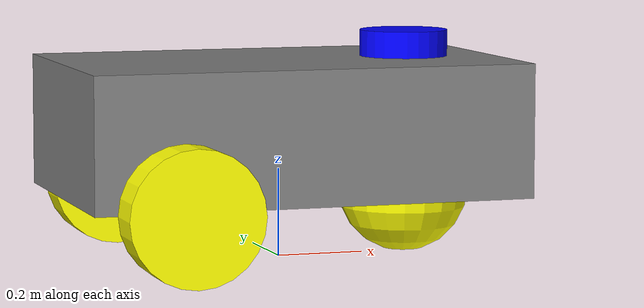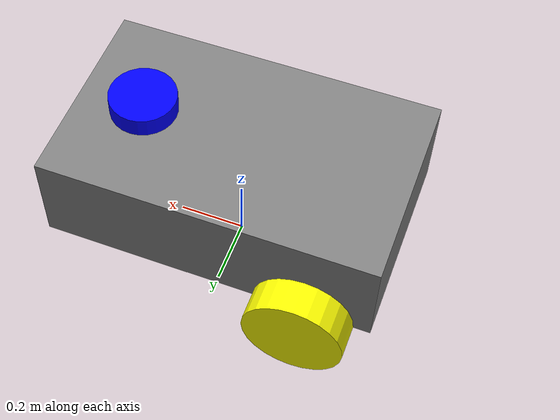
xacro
<?xml version="1.0"?>
<robot name="three_wheel_bot" xmlns:xacro="http://www.ros.org/wiki/xacro">
<!-- Uncomment this for debugging -->

  <!-- Pi Constant -->
  <xacro:property name="pi_const" value="3.14159265"/>

  <!-- Dimensions -->
  <xacro:property name="a" value="1"/>     <!-- Length -->
  <xacro:property name="b" value="0.3"/>   <!-- Height -->
  <xacro:property name="c" value="0.6"/>   <!-- Width -->
  <xacro:property name="r" value="0.15"/>  <!-- Wheel radius -->
  <xacro:property name="d" value="0.1"/>   <!-- Wheel thickness -->

  <!-- Offsets -->
  <xacro:property name="s1" value="${b / 2 + r}"/>
  <xacro:property name="s2" value="${2 * r}"/>
  <xacro:property name="s3" value="${2 * r}"/>
  <xacro:property name="s4" value="${c / 2 + d / 2}"/>

  <!-- LiDAR Dimensions -->
  <xacro:property name="lidar_radius" value="0.1"/>
  <xacro:property name="lidar_height" value="0.06"/>
  <xacro:property name="lidar_offset_z" value="${s1 + b/2 + lidar_height/2}"/>

  <!-- Densities -->
  <xacro:property name="d1" value="2710.0"/>
  <xacro:property name="d2" value="2710.0"/>
  <xacro:property name="d3" value="2710.0"/>

  <!-- Masses -->
  <xacro:property name="m1" value="${d1 * a * b * c}"/>
  <xacro:property name="m2" value="${d2 * pi_const * r * r * d}"/>
  <xacro:property name="m3" value="${d3 * (4.0 / 3.0) * pi_const * r * r * r}"/>

  <!-- Inertias -->
  <xacro:property name="Ix_body" value="${(1.0/12.0) * m1 * (b*b + c*c)}"/>
  <xacro:property name="Iy_body" value="${(1.0/12.0) * m1 * (a*a + c*c)}"/>
  <xacro:property name="Iz_body" value="${(1.0/12.0) * m1 * (a*a + b*b)}"/>

  <xacro:property name="Iz_wheel" value="${0.5 * m2 * r * r}"/>
  <xacro:property name="I_wheel" value="${(1.0 / 12.0) * m2 * (3.0 * r * r + d * d)}"/>
  <xacro:property name="I_caster" value="${(2.0 / 5.0) * m3 * r * r}"/>

  <!-- Inertial Macros -->
  <xacro:macro name="inertia_body">
    <inertial>
      <origin xyz="0 0 ${s1}" rpy="0 0 0"/>
      <mass value="${m1}"/>
      <inertia ixx="${Ix_body}" ixy="0.0" ixz="0.0" iyy="${Iy_body}" iyz="0.0" izz="${Iz_body}"/>
    </inertial>
  </xacro:macro>

  <xacro:macro name="inertia_wheel">
    <inertial>
      <origin xyz="0 0 0" rpy="1.570795 0 0"/>
      <mass value="${m2}"/>
      <inertia ixx="${I_wheel}" ixy="0.0" ixz="0.0" iyy="${I_wheel}" iyz="0.0" izz="${Iz_wheel}"/>
    </inertial>
  </xacro:macro>

  <xacro:macro name="inertia_caster">
    <inertial>
      <origin xyz="0 0 0" rpy="0 0 0"/>
      <mass value="${m3}"/>
      <inertia ixx="${I_caster}" ixy="0.0" ixz="0.0" iyy="${I_caster}" iyz="0.0" izz="${I_caster}"/>
    </inertial>
  </xacro:macro>

  <!-- Base and Body -->
  <link name="base_footprint"/>
  <joint name="body_link_joint" type="fixed">
    <parent link="base_footprint"/>
    <child link="body_link"/>
  </joint>

  <link name="body_link">
    <visual>
      <origin xyz="0 0 ${s1}" rpy="0 0 0"/>
      <geometry>
        <box size="${a} ${c} ${b}"/>
      </geometry>
      <material name="Grey">
        <color rgba="0.5 0.5 0.5 1.0"/>
      </material>
    </visual>
    <collision>
      <origin xyz="0 0 ${s1}" rpy="0 0 0"/>
      <geometry>
        <box size="${a} ${c} ${b}"/>
      </geometry>
    </collision>
    <xacro:inertia_body/>
  </link>

  <!-- Left Wheel -->
  <joint name="wheel1_joint" type="continuous">
    <parent link="body_link"/>
    <child link="wheel1_link"/>
    <origin xyz="${-1 * s2} ${-1 * s4} ${r}" rpy="0 0 0"/>
    <axis xyz="0 1 0"/>
    <limit effort="50000" velocity="10"/>
    <dynamics damping="1.0" friction="1.0"/>
  </joint>
  <link name="wheel1_link">
    <visual>
      <origin xyz="0 0 0" rpy="1.570795 0 0"/>
      <geometry>
        <cylinder length="${d}" radius="${r}"/>
      </geometry>
      <material name="Yellow">
        <color rgba="1.0 1.0 0.0 1.0"/>
      </material>
    </visual>
    <collision>
      <origin xyz="0 0 0" rpy="1.570795 0 0"/>
      <geometry>
        <cylinder length="${d}" radius="${r}"/>
      </geometry>
    </collision>
    <xacro:inertia_wheel/>
  </link>

  <!-- Right Wheel -->
  <joint name="wheel2_joint" type="continuous">
    <parent link="body_link"/>
    <child link="wheel2_link"/>
    <origin xyz="${-1 * s2} ${s4} ${r}" rpy="0 0 0"/>
    <axis xyz="0 1 0"/>
    <limit effort="50000" velocity="10"/>
    <dynamics damping="1.0" friction="1.0"/>
  </joint>
  <link name="wheel2_link">
    <visual>
      <origin xyz="0 0 0" rpy="1.570795 0 0"/>
      <geometry>
        <cylinder length="${d}" radius="${r}"/>
      </geometry>
      <material name="Yellow">
        <color rgba="1.0 1.0 0.0 1.0"/>
      </material>
    </visual>
    <collision>
      <origin xyz="0 0 0" rpy="1.570795 0 0"/>
      <geometry>
        <cylinder length="${d}" radius="${r}"/>
      </geometry>
    </collision>
    <xacro:inertia_wheel/>
  </link>

  <!-- Caster -->
  <joint name="caster_joint" type="fixed">
    <parent link="body_link"/>
    <child link="caster_link"/>
    <origin xyz="${s3} 0 ${r}" rpy="0 0 0"/>
  </joint>
  <link name="caster_link">
    <visual>
      <origin xyz="0 0 0" rpy="0 0 0"/>
      <geometry>
        <sphere radius="${r}"/>
      </geometry>
      <material name="Yellow">
        <color rgba="1.0 1.0 0.0 1.0"/>
      </material>
    </visual>
    <collision>
      <origin xyz="0 0 0" rpy="0 0 0"/>
      <geometry>
        <sphere radius="${r}"/>
      </geometry>
    </collision>
    <xacro:inertia_caster/>
  </link>

  <!-- LiDAR -->
  <link name="lidar_link">
    <visual>
      <origin xyz="0 0 0" rpy="0 0 0"/>
      <geometry>
        <cylinder radius="${lidar_radius}" length="${lidar_height}"/>
      </geometry>
      <material name="Blue">
        <color rgba="0 0 1 1"/>
      </material>
    </visual>
    <collision>
      <origin xyz="0 0 0" rpy="0 0 0"/>
      <geometry>
        <cylinder radius="${lidar_radius}" length="${lidar_height}"/>
      </geometry>
    </collision>
    <inertial>
      <mass value="0.1"/>
      <origin xyz="0 0 0" rpy="0 0 0"/>
      <inertia ixx="0.01" ixy="0" ixz="0" iyy="0.01" iyz="0" izz="0.01"/>
    </inertial>
  </link>

  <!-- LiDAR Joint (on top of body) -->
  <joint name="lidar_joint" type="fixed">
    <parent link="body_link"/>
    <child link="lidar_link"/>
    <origin xyz="0.3 0 ${lidar_offset_z}" rpy="0 0 0"/>
  </joint>

  <!-- Gazebo LiDAR Plugin -->
  <gazebo reference="lidar_link">
    <sensor name="lidar_sensor" type="ray">
      <pose>0 0 0 0 0 0</pose>
      <visualize>true</visualize>
      <update_rate>20</update_rate>
      <ray>
        <scan>
          <horizontal>
            <samples>720</samples>
            <resolution>1</resolution>
            <min_angle>-3.14159</min_angle>
            <max_angle>3.14159</max_angle>
          </horizontal>
        </scan>
        <range>
          <min>0.20</min>
          <max>15.0</max>
          <resolution>0.01</resolution>
        </range>
        <noise>
          <type>gaussian</type>
          <mean>0.0</mean>
          <stddev>0.01</stddev>
        </noise>
      </ray>
      <plugin name="gazebo_ros_laser_controller" filename="libgazebo_ros_laser.so">
        <topicName>/scan</topicName>
        <frameName>lidar_link</frameName>
      </plugin>
    </sensor>
  </gazebo>

  <!-- colors -->
  <gazebo reference="body_link">
    <material>Gazebo/Grey</material>
  </gazebo>

  <gazebo reference="wheel1_link">
    <material>Gazebo/Yellow</material>
  </gazebo>

  <gazebo reference="wheel2_link">
    <material>Gazebo/Yellow</material>
  </gazebo>

  <gazebo reference="caster_link">
    <material>Gazebo/Yellow</material>
  </gazebo>

  <gazebo reference="lidar_link">
    <material>Gazebo/Blue</material>
  </gazebo>

  <!-- Odom -->
  <gazebo>
    <plugin name="diff_drive_controller" filename="libgazebo_ros_diff_drive.so">
      <ros>
        <namespace>/</namespace>
        <remapping>cmd_vel:=cmd_vel</remapping>
        <remapping>odom:=odom</remapping>
      </ros>
      <updateRate>50</updateRate>
      <leftJoint>wheel1_joint</leftJoint>
      <rightJoint>wheel2_joint</rightJoint>
      <wheelSeparation>0.6</wheelSeparation>
      <wheelDiameter>0.3</wheelDiameter>
      <torque>10</torque>
      <commandTopic>cmd_vel</commandTopic>
      <odometryTopic>odom</odometryTopic>
      <odometryFrame>odom</odometryFrame>
      <robotBaseFrame>base_footprint</robotBaseFrame>

      <publishTf>true</publishTf>
    </plugin>
  </gazebo>

</robot>
